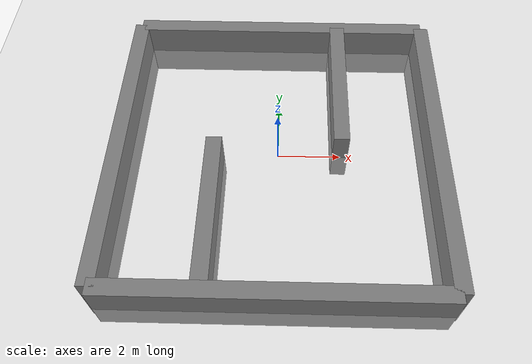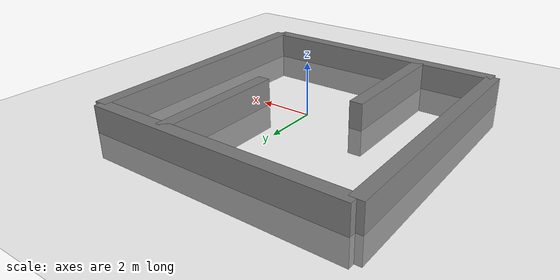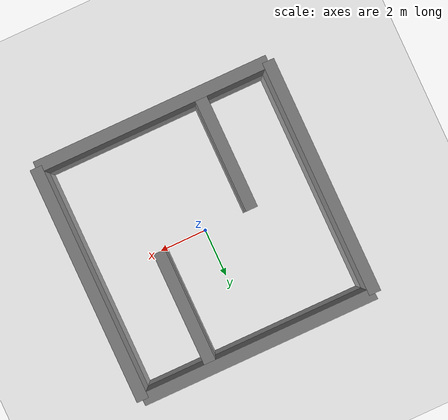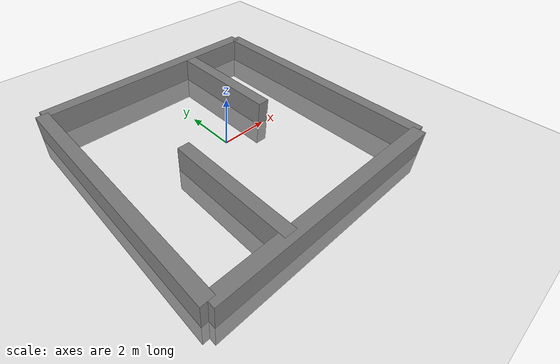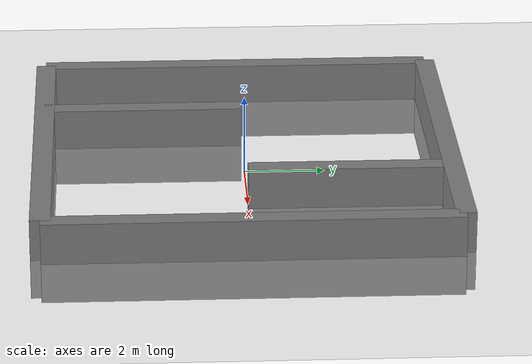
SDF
<?xml version="1.0" ?>
<sdf version="1.10">
    <world name="my_world">
        <physics name="1ms" type="ignored">
            <max_step_size>0.001</max_step_size>
            <real_time_factor>1.0</real_time_factor>
        </physics>
        <plugin
            filename="gz-sim-physics-system"
            name="gz::sim::systems::Physics">
        </plugin>
        <plugin
            filename="gz-sim-user-commands-system"
            name="gz::sim::systems::UserCommands">
        </plugin>

        <!-- IMU sensor plugin -->
        <plugin filename="gz-sim-imu-system"
                name="gz::sim::systems::Imu">
        </plugin>
        <!-- Contact sensor -->
            <plugin filename="gz-sim-contact-system"
                    name="gz::sim::systems::Contact">
        </plugin>

        <!-- Lidar plugin -->
        <plugin
            filename="gz-sim-sensors-system"
            name="gz::sim::systems::Sensors">
            <render_engine>ogre2</render_engine>
        </plugin>
        <plugin
            filename="gz-sim-scene-broadcaster-system"
            name="gz::sim::systems::SceneBroadcaster">
        </plugin>

        <light type="directional" name="sun">
            <cast_shadows>true</cast_shadows>
            <pose>0 0 10 0 0 0</pose>
            <diffuse>0.8 0.8 0.8 1</diffuse>
            <specular>0.2 0.2 0.2 1</specular>
            <attenuation>
                <range>1000</range>
                <constant>0.9</constant>
                <linear>0.01</linear>
                <quadratic>0.001</quadratic>
            </attenuation>
            <direction>-0.5 0.1 -0.9</direction>
        </light>

        <model name="ground_plane">
            <static>true</static>
            <link name="link">
                <collision name="collision">
                <geometry>
                    <plane>
                    <normal>0 0 1</normal>
                    </plane>
                </geometry>
                <surface>
                    <friction>
                      <ode>
                        <mu>100</mu>
                        <mu2>50</mu2>
                      </ode>
                      <torsional>
                        <ode/>
                      </torsional>
                    </friction>
                    <contact>
                      <ode/>
                    </contact>
                    <bounce/>
                  </surface>
                </collision>
                <visual name="visual">
                <geometry>
                    <plane>
                    <normal>0 0 1</normal>
                    <size>100 100</size>
                    </plane>
                </geometry>
                <material>
                    <ambient>0.8 0.8 0.8 1</ambient>
                    <diffuse>0.8 0.8 0.8 1</diffuse>
                    <specular>0.8 0.8 0.8 1</specular>
                </material>
                </visual>
            </link>
        </model>
        <gravity>0 0 -9.8</gravity>
        <physics type='ode'>
            <max_step_size>0.001</max_step_size>
            <real_time_factor>1</real_time_factor>
            <real_time_update_rate>1000</real_time_update_rate>
        </physics>
        <model name='wall_1'>
            <static>true</static>
            <pose>5 0 0 0 0 0</pose><!--pose relative to the world-->
            <link name='box'>
                <visual name='visual'>
                <geometry>
                    <box>
                    <size>0.5 10.0 2.0</size>
                    </box>
                </geometry>
                <!--let's add color to our link-->
                <material>
                    <ambient>0.5 0.5 0.5 1</ambient>
                    <diffuse>0.5 0.5 0.5 1</diffuse>
                    <specular>0.5 0.5 0.5 1</specular>
                </material>
                </visual>
                <collision name='collision'>
                <geometry>
                    <box>
                    <size>0.5 10.0 2.0</size>
                    </box>
                </geometry>
                </collision>
            </link>
        </model>
        <model name='wall_2'>
            <static>true</static>
            <pose>-5 0 0 0 0 0</pose><!--pose relative to the world-->
            <link name='box'>
                <visual name='visual'>
                <geometry>
                    <box>
                    <size>0.5 10.0 2.0</size>
                    </box>
                </geometry>
                <!--let's add color to our link-->
                <material>
                    <ambient>0.5 0.5 0.5 1</ambient>
                    <diffuse>0.5 0.5 0.5 1</diffuse>
                    <specular>0.5 0.5 0.5 1</specular>
                </material>
                </visual>
                <collision name='collision'>
                <geometry>
                    <box>
                    <size>0.5 10.0 2.0</size>
                    </box>
                </geometry>
                </collision>
            </link>
        </model>
        <model name='wall_3'>
            <static>true</static>
            <pose>0 5 0 0 0 1.57</pose><!--pose relative to the world-->
            <link name='box'>
                <visual name='visual'>
                <geometry>
                    <box>
                    <size>0.5 10.0 2.0</size>
                    </box>
                </geometry>
                <!--let's add color to our link-->
                <material>
                    <ambient>0.5 0.5 0.5 1</ambient>
                    <diffuse>0.5 0.5 0.5 1</diffuse>
                    <specular>0.5 0.5 0.5 1</specular>
                </material>
                </visual>
                <collision name='collision'>
                <geometry>
                    <box>
                    <size>0.5 10.0 2.0</size>
                    </box>
                </geometry>
                </collision>
            </link>
        </model>
        <model name='wall_4'>
            <static>true</static>
            <pose>0 -5 0 0 0 1.57</pose><!--pose relative to the world-->
            <link name='box'>
                <visual name='visual'>
                <geometry>
                    <box>
                    <size>0.5 10.0 2.0</size>
                    </box>
                </geometry>
                <!--let's add color to our link-->
                <material>
                    <ambient>0.5 0.5 0.5 1</ambient>
                    <diffuse>0.5 0.5 0.5 1</diffuse>
                    <specular>0.5 0.5 0.5 1</specular>
                </material>
                </visual>
                <collision name='collision'>
                <geometry>
                    <box>
                    <size>0.5 10.0 2.0</size>
                    </box>
                </geometry>
                </collision>
            </link>
        </model>
        <model name='wall_5'>
            <static>true</static>
            <pose>-2.0 -2.5 0 0 0 0</pose><!--pose relative to the world-->
            <link name='box'>
                <visual name='visual'>
                <geometry>
                    <box>
                    <size>0.5 5.0 2.0</size>
                    </box>
                </geometry>
                <!--let's add color to our link-->
                <material>
                    <ambient>0.5 0.5 0.5 1</ambient>
                    <diffuse>0.5 0.5 0.5 1</diffuse>
                    <specular>0.5 0.5 0.5 1</specular>
                </material>
                </visual>
                <collision name='collision'>
                <geometry>
                    <box>
                    <size>0.5 5.0 2.0</size>
                    </box>
                </geometry>
                </collision>
            </link>
        </model>
        <model name='wall_6'>
            <static>true</static>
            <pose>2.0 2.5 0 0 0 0</pose><!--pose relative to the world-->
            <link name='box'>
                <visual name='visual'>
                <geometry>
                    <box>
                    <size>0.5 5.0 2.0</size>
                    </box>
                </geometry>
                <!--let's add color to our link-->
                <material>
                    <ambient>0.5 0.5 0.5 1</ambient>
                    <diffuse>0.5 0.5 0.5 1</diffuse>
                    <specular>0.5 0.5 0.5 1</specular>
                </material>
                </visual>
                <collision name='collision'>
                <geometry>
                    <box>
                    <size>0.5 5.0 2.0</size>
                    </box>
                </geometry>
                </collision>
            </link>
        </model>
    </world>
</sdf>
